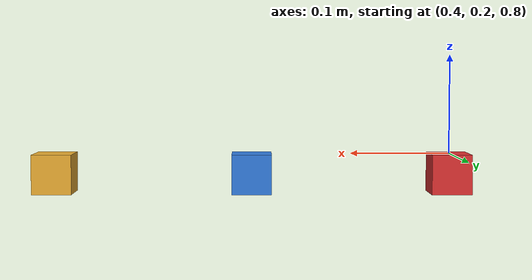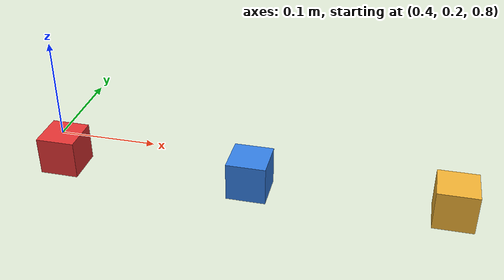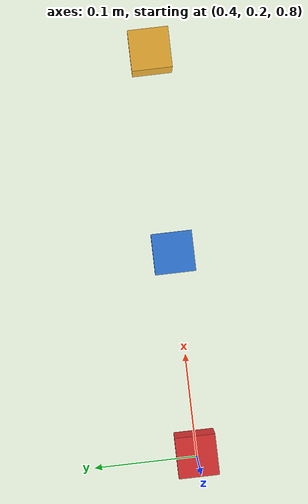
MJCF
<?xml version="1.0" encoding="utf-8"?>
<mujoco model="tangram_pieces">

  <!-- Compiler & Option，与 xArm7 保持一致 -->
  <compiler angle="radian" autolimits="true"/>
  <option integrator="implicitfast" timestep="0.002" gravity="0 0 -9.81"/>

  <!-- 资产定义 -->
  <asset>
    <!-- 材质 -->
    <material name="mat_red" rgba="0.90 0.20 0.20 1"/>
    <material name="mat_blue" rgba="0.20 0.50 0.90 1"/>
    <material name="mat_yellow" rgba="0.95 0.70 0.20 1"/>
  </asset>

  <!-- 默认属性：统一到 tg_piece class -->
  <default>
    <default class="tg_piece">
      <geom type="box" contype="1" conaffinity="1"
            friction="0.8 0.1 0.1" condim="6"
            solimp="0.9 0.95 0.001" solref="0.02 1"/>
      <joint type="free" damping="0.1"/>
    </default>
  </default>

  <worldbody>
    <body name="tg_L1" pos="0.4 0.2 0.78" childclass="tg_piece">
      <inertial pos="0 0 0" mass="0.1" diaginertia="0.0001 0.0001 0.0001"/>
      <joint type="free" damping="0.1"/>
      <geom size="0.02 0.02 0.02" material="mat_red"/>
    </body>

    <body name="tg_L2" pos="0.6 0.2 0.78" childclass="tg_piece">
      <inertial pos="0 0 0" mass="0.1" diaginertia="0.0001 0.0001 0.0001"/>
      <joint type="free" damping="0.1"/>
      <geom size="0.02 0.02 0.02" material="mat_blue"/>
    </body>

    <body name="tg_M"  pos="0.8 0.2 0.78" childclass="tg_piece">
      <inertial pos="0 0 0" mass="0.1" diaginertia="0.0001 0.0001 0.0001"/>
      <joint type="free" damping="0.1"/>
      <geom size="0.02 0.02 0.02" material="mat_yellow"/>
    </body>
  </worldbody>

</mujoco>
